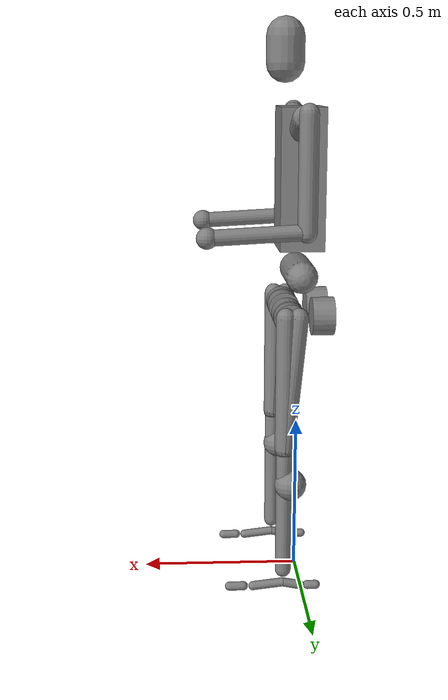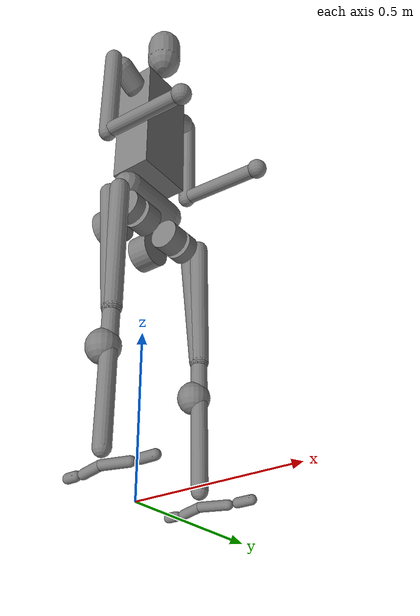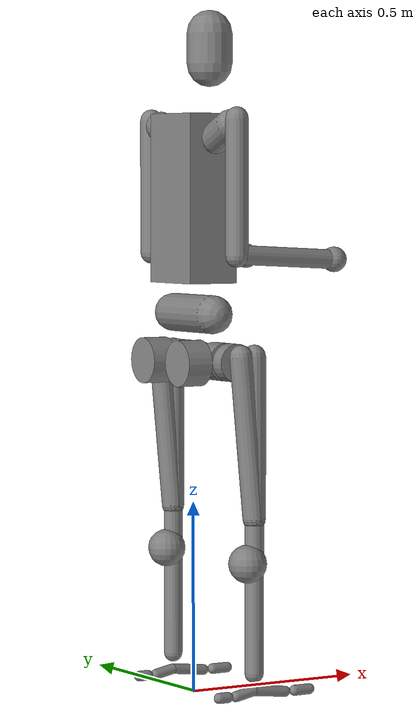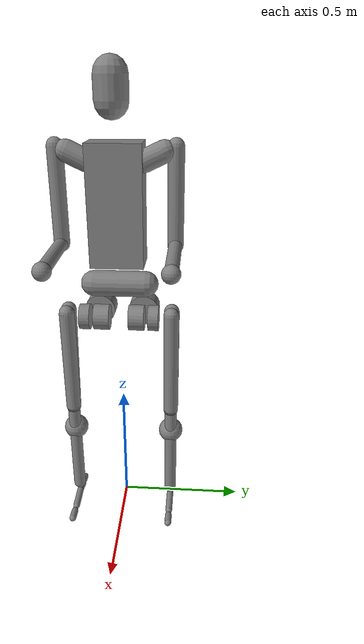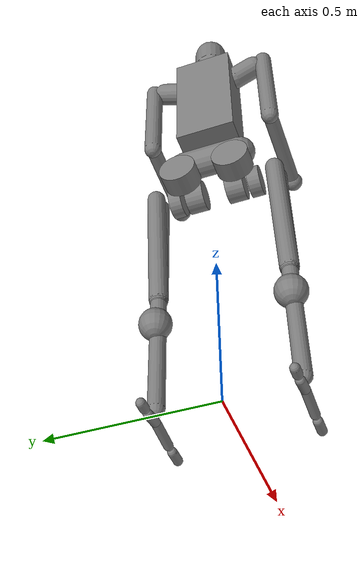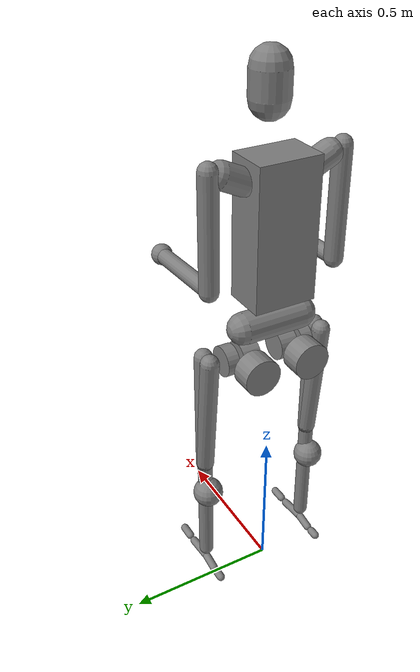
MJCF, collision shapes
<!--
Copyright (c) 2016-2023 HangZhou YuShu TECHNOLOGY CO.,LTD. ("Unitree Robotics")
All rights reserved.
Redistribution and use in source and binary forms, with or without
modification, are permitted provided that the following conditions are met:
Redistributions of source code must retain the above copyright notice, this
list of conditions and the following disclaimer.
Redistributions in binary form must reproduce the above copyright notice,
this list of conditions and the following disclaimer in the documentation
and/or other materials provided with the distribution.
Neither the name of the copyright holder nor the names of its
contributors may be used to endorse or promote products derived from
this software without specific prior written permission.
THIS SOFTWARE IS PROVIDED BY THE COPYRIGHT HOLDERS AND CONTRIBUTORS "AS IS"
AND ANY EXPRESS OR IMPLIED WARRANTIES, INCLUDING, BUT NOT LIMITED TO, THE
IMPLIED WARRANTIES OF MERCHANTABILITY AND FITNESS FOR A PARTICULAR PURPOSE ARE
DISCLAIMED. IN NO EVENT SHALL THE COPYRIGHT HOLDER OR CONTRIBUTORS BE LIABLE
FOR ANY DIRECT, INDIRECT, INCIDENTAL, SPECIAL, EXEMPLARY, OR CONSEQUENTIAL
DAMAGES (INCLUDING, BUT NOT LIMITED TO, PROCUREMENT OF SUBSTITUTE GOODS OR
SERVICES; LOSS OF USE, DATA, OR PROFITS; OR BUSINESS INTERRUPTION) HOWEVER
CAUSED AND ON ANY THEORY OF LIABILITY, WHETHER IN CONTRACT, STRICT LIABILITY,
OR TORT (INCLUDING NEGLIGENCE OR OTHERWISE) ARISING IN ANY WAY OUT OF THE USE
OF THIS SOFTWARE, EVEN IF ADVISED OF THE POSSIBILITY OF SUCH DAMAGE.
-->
<mujoco model="h1">
  <compiler angle="radian" meshdir="../meshes" autolimits="true" />
  <option iterations="3" ls_iterations="5" timestep="0.002" integrator="Euler">
    <flag eulerdamp="disable" />
  </option>

  <default>
    <default class="h1">
      <geom type="mesh" contype="0" conaffinity="0" />
      <position inheritrange="1" dampratio="1" />

      <default class="strong_motor">
        <joint damping="0.001" armature="0.01" frictionloss="0.1" />
      </default>
      <default class="weak_motor">
        <joint damping="0.001" armature="0.01" frictionloss="0.1" />
      </default>

      <default class="visual">
        <geom contype="0" conaffinity="0" group="1" material="black" />
      </default>
      <default class="collision">
        <geom group="2" mass="0" density="0" />
        <default class="foot">
          <geom type="capsule" size=".014" contype="0" conaffinity="1" friction="1.0" />
          <default class="foot1">
            <geom fromto="-.035 0 -0.056 .02 0 -0.045" />
          </default>
          <default class="foot2">
            <geom fromto=".02 0 -0.045 .115 0 -0.056" />
          </default>
          <default class="foot3">
            <geom fromto=".145 -.0 -0.056 .19 .0 -0.056" />
          </default>
          <default class="foot4">
            <geom fromto="-.06 -.0 -0.056 -.086 .0 -0.056" />
          </default>
        </default>
      </default>

      <default class="mimic">
        <site group="4" type="box" size="0.075 0.05 0.025" rgba="1.0 0.0 0.0 0.5" />
      </default>

      <site size="0.001" rgba="0.5 0.5 0.5 0.3" group="4" />

      <motor ctrllimited="true" />
    </default>
  </default>

  <asset>
    <material name="black" rgba="0.2 0.2 0.2 1" />
    <material name="white" rgba="1 1 1 1" />

    <mesh file="pelvis.stl" />
    <mesh file="left_hip_yaw_link.stl" />
    <mesh file="left_hip_roll_link.stl" />
    <mesh file="left_hip_pitch_link.stl" />
    <mesh file="left_knee_link.stl" />
    <mesh file="left_ankle_link.STL" />
    <mesh file="right_hip_yaw_link.stl" />
    <mesh file="right_hip_roll_link.stl" />
    <mesh file="right_hip_pitch_link.stl" />
    <mesh file="right_knee_link.stl" />
    <mesh file="right_ankle_link.STL" />
    <mesh file="torso_link.stl" />
    <mesh file="left_shoulder_pitch_link.stl" />
    <mesh file="left_shoulder_roll_link.stl" />
    <mesh file="left_shoulder_yaw_link.stl" />
    <mesh file="left_elbow_link.stl" />
    <mesh file="right_shoulder_pitch_link.stl" />
    <mesh file="right_shoulder_roll_link.stl" />
    <mesh file="right_shoulder_yaw_link.stl" />
    <mesh file="right_elbow_link.stl" />
    <mesh file="logo_link.stl" />
  </asset>

  <worldbody>

    <body name="pelvis" pos="0 0 1.045" childclass="h1">
      <site name="pelvis_mimic" class="mimic" />
      <inertial pos="-0.0002 4e-05 -0.04522" quat="0.498303 0.499454 -0.500496 0.501741" mass="5.39"
        diaginertia="0.0490211 0.0445821 0.00824619" />
      <light name="spotlight" mode="trackcom" pos="0 -2 50" dir="0 0 -1" />
      <freejoint name="root" />
      <geom class="visual" mesh="pelvis" />
      <geom name="pelvis_col" class="collision" type="capsule" size="0.05" fromto="0 -0.1 -0.05 0 0.1 -0.05" />
      <body name="left_hip_yaw_link" pos="0 0.0875 -0.1742">
        <site name="left_hip_mimic" class="mimic" pos="0.05 0.0 0.0" />
        <inertial pos="-0.04923 0.0001 0.0072" quat="0.69699 0.219193 0.233287 0.641667" mass="2.244"
          diaginertia="0.00304494 0.00296885 0.00189201" />
        <joint name="left_hip_yaw" axis="0 0 1" range="-0.43 0.43" class="strong_motor" />
        <geom class="visual" mesh="left_hip_yaw_link" />
        <geom name="left_hip_yaw_col" class="collision" type="cylinder" size="0.06 0.035" pos="-0.067 0 0"
          quat="0.707123 0 0.70709 0" />
        <body name="left_hip_roll_link" pos="0.039468 0 0">
          <inertial pos="-0.0058 -0.00319 -9e-05" quat="0.0438242 0.70721 -0.0729075 0.701867" mass="2.232"
            diaginertia="0.00243264 0.00225325 0.00205492" />
          <joint name="left_hip_roll" axis="1 0 0" range="-0.43 0.43" class="strong_motor" />
          <geom class="visual" mesh="left_hip_roll_link" />
          <geom name="left_hip_roll_col" class="collision" type="cylinder" size="0.05 0.03" quat="1 1 0 0"
            pos="0 -0.02 0" />
          <body name="left_hip_pitch_link" pos="0 0.11536 0">
            <inertial pos="0.00746 -0.02346 -0.08193" quat="0.979828 0.0513522 -0.0169854 -0.192382" mass="4.152"
              diaginertia="0.0829503 0.0821457 0.00510909" />
            <joint name="left_hip_pitch" axis="0 1 0" range="-2.40 2.00" class="strong_motor" />
            <geom class="visual" mesh="left_hip_pitch_link" />
            <geom name="left_hip_pitch1_col" class="collision" type="capsule" size="0.03"
              fromto="0.02 0 -0.4 -0.02 0 0.02" />
            <geom name="left_hip_pitch2_col" class="collision" type="capsule" size="0.03"
              fromto="0.02 0 -0.4 0.02 0 0.02" />
            <geom name="left_hip_pitch3_col" class="collision" type="cylinder" size="0.05 0.02" quat="1 1 0 0"
              pos="0 -0.07 0" />
            <body name="left_knee_link" pos="0 0 -0.4">
              <site name="left_knee_mimic" class="mimic" />
              <inertial pos="-0.00136 -0.00512 -0.1384" quat="0.626132 -0.034227 -0.0416277 0.777852" mass="1.721"
                diaginertia="0.0125237 0.0123104 0.0019428" />
              <joint name="left_knee" axis="0 1 0" range="-0.26 2.05" class="strong_motor" />
              <geom class="visual" mesh="left_knee_link" />
              <geom name="left_knee1_col" class="collision" type="capsule" size="0.025" fromto="0.02 0 -0.4 0.02 0 0" />
              <geom name="left_knee2_col" class="collision" type="sphere" size="0.05" pos="0 0 -0.115" />
              <body name="left_ankle_link" pos="0 0 -0.4">
                <site name="left_foot_mimic" class="mimic" pos="0.075 0.0 -0.05" />
                <inertial pos="0.048568 0 -0.045609" quat="0.489385 0.510394 0.510394 0.489385" mass="0.552448"
                  diaginertia="0.00362 0.00355701 0.000149987" />
                <joint name="left_ankle" axis="0 1 0" range="-0.87 0.52" damping="2" class="strong_motor" />
                <geom class="visual" mesh="left_ankle_link" />
                <geom name="left_foot1_col" class="foot1" />
                <geom name="left_foot2_col" class="foot2" />
                <geom name="left_foot3_col" class="foot3" />
                <geom name="left_foot4_col" class="foot4" />
              </body>
            </body>
          </body>
        </body>
      </body>
      <body name="right_hip_yaw_link" pos="0 -0.0875 -0.1742">
        <site name="right_hip_mimic" class="mimic" pos="0.05 0.0 0.0" />
        <inertial pos="-0.04923 -0.0001 0.0072" quat="0.641667 0.233287 0.219193 0.69699" mass="2.244"
          diaginertia="0.00304494 0.00296885 0.00189201" />
        <joint name="right_hip_yaw" axis="0 0 1" range="-0.43 0.43" class="strong_motor" />
        <geom class="visual" mesh="right_hip_yaw_link" />
        <geom name="right_hip_yaw_col" class="collision" type="cylinder" size="0.06 0.035" pos="-0.067 0 0"
          quat="0.707123 0 0.70709 0" />
        <body name="right_hip_roll_link" pos="0.039468 0 0">
          <inertial pos="-0.0058 0.00319 -9e-05" quat="-0.0438242 0.70721 0.0729075 0.701867" mass="2.232"
            diaginertia="0.00243264 0.00225325 0.00205492" />
          <joint name="right_hip_roll" axis="1 0 0" range="-0.43 0.43" class="strong_motor" />
          <geom class="visual" mesh="right_hip_roll_link" />
          <geom name="right_hip_roll_col" class="collision" type="cylinder" size="0.05 0.03" quat="1 1 0 0"
            pos="0 0.02 0" />
          <body name="right_hip_pitch_link" pos="0 -0.11536 0">
            <inertial pos="0.00746 0.02346 -0.08193" quat="0.979828 -0.0513522 -0.0169854 0.192382" mass="4.152"
              diaginertia="0.0829503 0.0821457 0.00510909" />
            <joint name="right_hip_pitch" axis="0 1 0" range="-2.40 2.00" class="strong_motor" />
            <geom class="visual" mesh="right_hip_pitch_link" />
            <geom name="right_hip_pitch1_col" class="collision" type="capsule" size="0.03"
              fromto="0.02 0 -0.4 -0.02 0 0.02" />
            <geom name="right_hip_pitch2_col" class="collision" type="capsule" size="0.03"
              fromto="0.02 0 -0.4 0.02 0 0.02" />
            <geom name="right_hip_pitch3_col" class="collision" type="cylinder" size="0.05 0.02"
              quat="1 1 0 0" pos="0 0.07 0" />
            <body name="right_knee_link" pos="0 0 -0.4">
              <site name="right_knee_mimic" class="mimic" />
              <inertial pos="-0.00136 0.00512 -0.1384" quat="0.777852 -0.0416277 -0.034227 0.626132" mass="1.721"
                diaginertia="0.0125237 0.0123104 0.0019428" />
              <joint name="right_knee" axis="0 1 0" range="-0.26 2.05" class="strong_motor" />
              <geom class="visual" mesh="right_knee_link" />
              <geom name="right_knee1_col" class="collision" type="capsule" size="0.025" fromto="0.02 0 -0.4 0.02 0 0" />
              <geom name="right_knee2_col" class="collision" type="sphere" size="0.05" pos="0 0 -0.115" />
              <body name="right_ankle_link" pos="0 0 -0.4">
                <site name="right_foot_mimic" class="mimic" pos="0.075 0.0 -0.05" />
                <inertial pos="0.048568 0 -0.045609" quat="0.489385 0.510394 0.510394 0.489385" mass="0.552448"
                  diaginertia="0.00362 0.00355701 0.000149987" />
                <joint name="right_ankle" axis="0 1 0" range="-0.87 0.52" damping="2" class="strong_motor" />
                <geom class="visual" mesh="right_ankle_link" />
                <geom name="right_foot1_col" class="foot1" />
                <geom name="right_foot2_col" class="foot2" />
                <geom name="right_foot3_col" class="foot3" />
                <geom name="right_foot4_col" class="foot4" />
              </body>
            </body>
          </body>
        </body>
      </body>
      <body name="torso_link">
        <site name="torso_frame" />
        <site name="upper_body_mimic" class="mimic" pos="0.05 0.0 0.3" />
        <site name="head_mimic" class="mimic" pos="0.0 0.0 0.6" />
        <inertial pos="0.000489 0.002797 0.20484"
          quat="0.999989 -0.00130808 -0.00282289 -0.00349105" mass="17.789"
          diaginertia="0.487315 0.409628 0.127837" />
        <joint name="torso" axis="0 0 1" range="-2.35 2.35" damping="3.0" class="strong_motor"/>
        <geom class="visual" mesh="torso_link" />
        <geom class="visual" material="white" mesh="logo_link" />
        <geom name="head_col" class="collision" type="capsule" size="0.06"
          fromto="0.05 0 0.68 0.05 0 0.6" />
        <geom name="torso_col" class="collision" type="box" size="0.07 0.1 0.22" pos="0 0 0.25" />

        <site name="imu" size="0.01" pos="-0.04452 -0.01891 0.27756" />
        <body name="left_shoulder_pitch_link" pos="0.0055 0.15535 0.42999" quat="0.976296 0.216438 0 0">
          <inertial pos="0.005045 0.053657 -0.015715" quat="0.814858 0.579236 -0.0201072 -0.00936488" mass="1.033"
            diaginertia="0.00129936 0.000987113 0.000858198" />
          <joint name="left_shoulder_pitch" axis="0 1 0" range="-2.87 2.87" class="weak_motor" />
          <geom class="visual" mesh="left_shoulder_pitch_link" />
          <geom name="left_shoulder_col" class="collision" type="capsule" size="0.04" fromto="0 0.02 0.0 0 -0.06 -0.0" />
          <body name="left_shoulder_roll_link" pos="-0.0055 0.0565 -0.0165" quat="0.976296 -0.216438 0 0">
            <site name="left_shoulder_mimic" class="mimic" />
            <inertial pos="0.000679 0.00115 -0.094076" quat="0.732491 0.00917179 0.0766656 0.676384" mass="0.793"
              diaginertia="0.00170388 0.00158256 0.00100336" />
            <joint name="left_shoulder_roll" axis="1 0 0" range="-0.34 3.11" class="weak_motor" />
            <geom class="visual" mesh="left_shoulder_roll_link" />
            <body name="left_shoulder_yaw_link" pos="0 0 -0.1343">
              <inertial pos="0.01365 0.002767 -0.16266" quat="0.703042 -0.0331229 -0.0473362 0.708798" mass="0.839"
                diaginertia="0.00408038 0.00370367 0.000622687" />
              <joint name="left_shoulder_yaw" axis="0 0 1" range="-1.3 4.45" class="weak_motor" />
              <geom class="visual" mesh="left_shoulder_yaw_link" />
              <geom name="left_arm_col" class="collision" type="capsule" size="0.03" fromto="0 0 0.15 0 0 -0.2" />
              <body name="left_elbow_link" pos="0.0185 0 -0.198">
                <site name="left_elbow_mimic" class="mimic" />
                <site name="left_hand_mimic" class="mimic" pos="0.3 0.0 0.0" />
                <inertial pos="0.15908 -0.000144 -0.015776" quat="0.0765232 0.720327 0.0853116 0.684102" mass="0.669"
                  diaginertia="0.00601829 0.00600579 0.000408305" />
                <joint name="left_elbow" axis="0 1 0" range="-1.25 2.61" class="weak_motor" />
                <geom class="visual" mesh="left_elbow_link" />
                <geom name="left_forearm_col" class="collision" type="capsule" size="0.025" fromto="0 0 0 0.28 0 -0.015" />
                <geom name="left_hand_col" class="collision" type="sphere" size="0.033" pos="0.28 0 -0.015" />
              </body>
            </body>
          </body>
        </body>
        <body name="right_shoulder_pitch_link" pos="0.0055 -0.15535 0.42999" quat="0.976296 -0.216438 0 0">
          <inertial pos="0.005045 -0.053657 -0.015715" quat="0.579236 0.814858 0.00936488 0.0201072" mass="1.033"
            diaginertia="0.00129936 0.000987113 0.000858198" />
          <joint name="right_shoulder_pitch" axis="0 1 0" range="-2.87 2.87" class="weak_motor" />
          <geom class="visual" mesh="right_shoulder_pitch_link" />
          <geom name="right_shoulder_col" class="collision" type="capsule" size="0.04" fromto="0 -0.02 0.0 0 0.06 -0.0" />
          <body name="right_shoulder_roll_link" pos="-0.0055 -0.0565 -0.0165" quat="0.976296 0.216438 0 0">
            <site name="right_shoulder_mimic" class="mimic" />
            <inertial pos="0.000679 -0.00115 -0.094076" quat="0.676384 0.0766656 0.00917179 0.732491" mass="0.793"
              diaginertia="0.00170388 0.00158256 0.00100336" />
            <joint name="right_shoulder_roll" axis="1 0 0" range="-3.11 0.34" class="weak_motor" />
            <geom class="visual" mesh="right_shoulder_roll_link" />
            <body name="right_shoulder_yaw_link" pos="0 0 -0.1343">
              <inertial pos="0.01365 -0.002767 -0.16266" quat="0.708798 -0.0473362 -0.0331229 0.703042" mass="0.839"
                diaginertia="0.00408038 0.00370367 0.000622687" />
              <joint name="right_shoulder_yaw" axis="0 0 1" range="-4.45 1.3" class="weak_motor" />
              <geom class="visual" mesh="right_shoulder_yaw_link" />
              <geom name="right_arm_col" class="collision" type="capsule" size="0.03" fromto="0 0 0.15 0 0 -0.2" />
              <body name="right_elbow_link" pos="0.0185 0 -0.198">
                <site name="right_elbow_mimic" class="mimic" />
                <site name="right_hand_mimic" class="mimic" pos="0.3 0.0 0.0" />
                <inertial pos="0.15908 0.000144 -0.015776" quat="-0.0765232 0.720327 -0.0853116 0.684102" mass="0.669"
                  diaginertia="0.00601829 0.00600579 0.000408305" />
                <joint name="right_elbow" axis="0 1 0" range="-1.25 2.61" class="weak_motor" />
                <geom class="visual" mesh="right_elbow_link" />
                <geom name="right_forearm_col" class="collision" type="capsule" size="0.025" fromto="0 0 0 0.28 0 -0.015" />
                <geom name="right_hand_col" class="collision" type="sphere" size="0.033" pos="0.28 0 -0.015" />
              </body>
            </body>
          </body>
        </body>
      </body>
    </body>
  </worldbody>

  <sensor>
    <gyro site="imu" name="local_angvel" />
    <velocimeter site="imu" name="local_linvel" />
    <accelerometer site="imu" name="local_linacc" />
    <framepos objtype="site" objname="imu" name="position" />
    <framezaxis objtype="site" objname="imu" name="upvector" />
    <framexaxis objtype="site" objname="imu" name="forwardvector" />
    <framelinvel objtype="site" objname="imu" name="global_linvel" />
    <frameangvel objtype="site" objname="imu" name="global_angvel" />
    <framequat objtype="site" objname="imu" name="orientation" />
  </sensor>

  <actuator>
    <motor class="h1" name="left_hip_yaw" joint="left_hip_yaw" ctrlrange="-200 200" />
    <motor class="h1" name="left_hip_roll" joint="left_hip_roll" ctrlrange="-200 200" />
    <motor class="h1" name="left_hip_pitch" joint="left_hip_pitch" ctrlrange="-200 200" />
    <motor class="h1" name="left_knee" joint="left_knee" ctrlrange="-300 300" />
    <motor class="h1" name="left_ankle" joint="left_ankle" ctrlrange="-40 40" />

    <motor class="h1" name="right_hip_yaw" joint="right_hip_yaw" ctrlrange="-200 200" />
    <motor class="h1" name="right_hip_roll" joint="right_hip_roll" ctrlrange="-200 200" />
    <motor class="h1" name="right_hip_pitch" joint="right_hip_pitch" ctrlrange="-200 200" />
    <motor class="h1" name="right_knee" joint="right_knee" ctrlrange="-300 300" />
    <motor class="h1" name="right_ankle" joint="right_ankle" ctrlrange="-40 40" />

    <motor class="h1" name="torso" joint="torso" ctrlrange="-200 200" />

    <motor class="h1" name="left_shoulder_pitch" joint="left_shoulder_pitch" ctrlrange="-40 40" />
    <motor class="h1" name="left_shoulder_roll" joint="left_shoulder_roll" ctrlrange="-40 40" />
    <motor class="h1" name="left_shoulder_yaw" joint="left_shoulder_yaw" ctrlrange="-18 18" />
    <motor class="h1" name="left_elbow" joint="left_elbow" ctrlrange="-18 18" />

    <motor class="h1" name="right_shoulder_pitch" joint="right_shoulder_pitch" ctrlrange="-40 40" />
    <motor class="h1" name="right_shoulder_roll" joint="right_shoulder_roll" ctrlrange="-40 40" />
    <motor class="h1" name="right_shoulder_yaw" joint="right_shoulder_yaw" ctrlrange="-18 18" />
    <motor class="h1" name="right_elbow" joint="right_elbow" ctrlrange="-18 18" />

  </actuator>
</mujoco>
